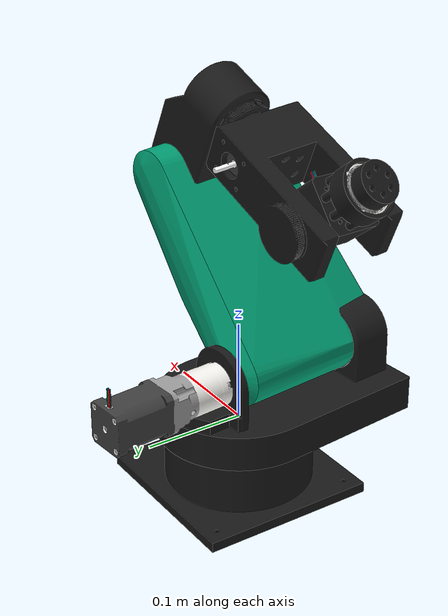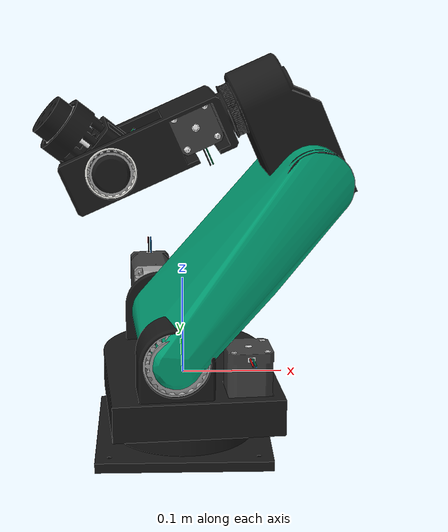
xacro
<?xml version="1.0"?>
<robot xmlns:xacro="http://www.ros.org/wiki/xacro" name="6DOF_URDF">

  <!-- Materials (shared across all assemblies) -->
  <material name="PETG_15_Gyroid">
    <color rgba="0.098 0.098 0.098 1.0"/>
  </material>

  <!-- Assembly includes -->
  <xacro:include filename="$(find 6DOF_URDF_description)/urdf/assemblies/6DOF_URDF.urdf.xacro"/>

  <!-- Instantiate assemblies -->
  <xacro:assembly_6DOF_URDF prefix=""/>

</robot>

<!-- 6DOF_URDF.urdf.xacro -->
<robot xmlns:xacro="http://www.ros.org/wiki/xacro" name="6DOF_URDF_macro">

  <xacro:macro name="assembly_6DOF_URDF" params="prefix">

    <!-- Links -->
    <link name="${prefix}base_link">
      <inertial>
        <origin xyz="0.000000 0.000000 -0.031884" rpy="0 0 0"/>
        <mass value="0.596687"/>
        <inertia ixx="8.608796e-04" ixy="0.000000e+00" ixz="0.000000e+00"
                 iyy="8.608778e-04" iyz="0.000000e+00" izz="1.231935e-03"/>
      </inertial>
      <visual>
        <origin xyz="0.000000 0.000000 0.000000" rpy="0.000000 0.000000 0.000000"/>
        <geometry>
          <mesh filename="package://6DOF_URDF_description/meshes/6DOF_URDF/base_link.dae" scale="1 1 1"/>
        </geometry>
        <material name="PETG_15_Gyroid"/>
      </visual>
      <collision>
        <origin xyz="0.000000 0.000000 0.000000" rpy="0.000000 0.000000 0.000000"/>
        <geometry>
          <mesh filename="package://6DOF_URDF_description/meshes/6DOF_URDF/base_link_collision.stl" scale="0.01 0.01 0.01"/>
        </geometry>
      </collision>
    </link>

    <link name="${prefix}Shoulder">
      <inertial>
        <origin xyz="-0.000095 -0.008184 0.098482" rpy="0 0 0"/>
        <mass value="2.094136"/>
        <inertia ixx="2.587229e-02" ixy="5.786696e-03" ixz="7.038970e-04"
                 iyy="4.623819e-03" iyz="-1.651409e-03" izz="2.818176e-02"/>
      </inertial>
      <visual>
        <origin xyz="0.000000 0.000000 0.000000" rpy="0.000000 0.000000 0.086342"/>
        <geometry>
          <mesh filename="package://6DOF_URDF_description/meshes/6DOF_URDF/Shoulder.dae" scale="1 1 1"/>
        </geometry>
      </visual>
      <collision>
        <origin xyz="0.000000 0.000000 0.000000" rpy="0.000000 0.000000 0.086342"/>
        <geometry>
          <mesh filename="package://6DOF_URDF_description/meshes/6DOF_URDF/Shoulder_collision.stl" scale="0.01 0.01 0.01"/>
        </geometry>
      </collision>
    </link>

    <link name="${prefix}UA">
      <inertial>
        <origin xyz="0.070469 0.078205 -0.113480" rpy="0 0 0"/>
        <mass value="1.236306"/>
        <inertia ixx="4.958228e-03" ixy="-2.087939e-03" ixz="-1.318650e-07"
                 iyy="4.306581e-03" iyz="-2.819097e-05" izz="4.648503e-03"/>
      </inertial>
      <visual>
        <origin xyz="0.000000 0.000000 0.000000" rpy="0.000000 0.000000 -0.698132"/>
        <geometry>
          <mesh filename="package://6DOF_URDF_description/meshes/6DOF_URDF/UA.dae" scale="1 1 1"/>
        </geometry>
      </visual>
      <collision>
        <origin xyz="0.000000 0.000000 0.000000" rpy="0.000000 0.000000 -0.698132"/>
        <geometry>
          <mesh filename="package://6DOF_URDF_description/meshes/6DOF_URDF/UA_collision.stl" scale="0.01 0.01 0.01"/>
        </geometry>
      </collision>
    </link>

    <link name="${prefix}Elbow">
      <inertial>
        <origin xyz="-0.015531 0.020790 -0.069395" rpy="0 0 0"/>
        <mass value="0.733476"/>
        <inertia ixx="1.328959e-03" ixy="4.778990e-04" ixz="-2.397529e-05"
                 iyy="7.168999e-04" iyz="3.209492e-05" izz="1.533380e-03"/>
      </inertial>
      <visual>
        <origin xyz="0.000000 0.000000 0.000000" rpy="0.000000 0.000000 -0.698132"/>
        <geometry>
          <mesh filename="package://6DOF_URDF_description/meshes/6DOF_URDF/Elbow.dae" scale="1 1 1"/>
        </geometry>
      </visual>
      <collision>
        <origin xyz="0.000000 0.000000 0.000000" rpy="0.000000 0.000000 -0.698132"/>
        <geometry>
          <mesh filename="package://6DOF_URDF_description/meshes/6DOF_URDF/Elbow_collision.stl" scale="0.01 0.01 0.01"/>
        </geometry>
      </collision>
    </link>

    <link name="${prefix}Roll">
      <inertial>
        <origin xyz="-0.001708 -0.009290 0.127780" rpy="0 0 0"/>
        <mass value="0.682370"/>
        <inertia ixx="1.825964e-03" ixy="-6.698787e-05" ixz="-2.868309e-05"
                 iyy="1.445666e-03" iyz="-1.542829e-04" izz="6.361788e-04"/>
      </inertial>
      <visual>
        <origin xyz="0.000000 0.000000 0.000000" rpy="3.141593 0.000000 -0.214197"/>
        <geometry>
          <mesh filename="package://6DOF_URDF_description/meshes/6DOF_URDF/Roll.dae" scale="1 1 1"/>
        </geometry>
      </visual>
      <collision>
        <origin xyz="0.000000 0.000000 0.000000" rpy="3.141593 0.000000 -0.214197"/>
        <geometry>
          <mesh filename="package://6DOF_URDF_description/meshes/6DOF_URDF/Roll_collision.stl" scale="0.01 0.01 0.01"/>
        </geometry>
      </collision>
    </link>

    <link name="${prefix}Yaw">
      <inertial>
        <origin xyz="-0.015546 -0.012336 0.050500" rpy="0 0 0"/>
        <mass value="0.259842"/>
        <inertia ixx="1.293116e-04" ixy="-3.743600e-05" ixz="-3.755642e-12"
                 iyy="1.422665e-04" iyz="1.808699e-10" izz="1.729664e-04"/>
      </inertial>
      <visual>
        <origin xyz="0.000000 0.000000 0.000000" rpy="-3.141593 0.000000 -0.412197"/>
        <geometry>
          <mesh filename="package://6DOF_URDF_description/meshes/6DOF_URDF/Yaw.dae" scale="1 1 1"/>
        </geometry>
      </visual>
      <collision>
        <origin xyz="0.000000 0.000000 0.000000" rpy="-3.141593 0.000000 -0.412197"/>
        <geometry>
          <mesh filename="package://6DOF_URDF_description/meshes/6DOF_URDF/Yaw_collision.stl" scale="0.01 0.01 0.01"/>
        </geometry>
      </collision>
    </link>

    <link name="${prefix}Gripper">
      <inertial>
        <origin xyz="0.000000 0.000000 -0.014692" rpy="0 0 0"/>
        <mass value="0.011203"/>
        <inertia ixx="1.935595e-06" ixy="0.000000e+00" ixz="0.000000e+00"
                 iyy="1.935595e-06" iyz="0.000000e+00" izz="1.864791e-06"/>
      </inertial>
      <visual>
        <origin xyz="0.000000 0.000000 0.000000" rpy="0.000000 0.000000 -0.607892"/>
        <geometry>
          <mesh filename="package://6DOF_URDF_description/meshes/6DOF_URDF/Gripper.dae" scale="1 1 1"/>
        </geometry>
      </visual>
      <collision>
        <origin xyz="0.000000 0.000000 0.000000" rpy="0.000000 0.000000 -0.607892"/>
        <geometry>
          <mesh filename="package://6DOF_URDF_description/meshes/6DOF_URDF/Gripper_collision.stl" scale="0.01 0.01 0.01"/>
        </geometry>
      </collision>
    </link>

    <!-- Joints (internal to assembly) -->
    <joint name="${prefix}Revolute_5" type="revolute">
      <parent link="${prefix}base_link"/>
      <child link="${prefix}Shoulder"/>
      <origin xyz="0.000000 0.000000 -0.051500" rpy="0.000000 0.000000 0.000000"/>
      <axis xyz="0.000000 0.000000 1.000000"/>
      <limit lower="0.000000" upper="6.283185" effort="100.0" velocity="1.00"/>
    </joint>

    <joint name="${prefix}Revolute_13" type="revolute">
      <parent link="${prefix}Shoulder"/>
      <child link="${prefix}UA"/>
      <origin xyz="-0.007100 -0.149900 0.111900" rpy="1.570796 0.000000 0.086342"/>
      <axis xyz="0.000000 0.000000 1.000000"/>
      <limit lower="0.000000" upper="6.283185" effort="100.0" velocity="1.00"/>
    </joint>

    <joint name="${prefix}Revolute_29" type="revolute">
      <parent link="${prefix}UA"/>
      <child link="${prefix}Elbow"/>
      <origin xyz="0.133252 0.154914 -0.036000" rpy="0.000000 0.000000 0.000000"/>
      <axis xyz="0.000000 0.000000 1.000000"/>
      <limit lower="0.000000" upper="6.283185" effort="100.0" velocity="1.00"/>
    </joint>

    <joint name="${prefix}Revolute_37" type="revolute">
      <parent link="${prefix}Elbow"/>
      <child link="${prefix}Roll"/>
      <origin xyz="-0.015463 0.083655 -0.071500" rpy="1.570796 -0.214197 -1.161568"/>
      <axis xyz="0.000000 0.000000 1.000000"/>
      <limit lower="0.000000" upper="6.283185" effort="100.0" velocity="1.00"/>
    </joint>

    <joint name="${prefix}Revolute_43" type="revolute">
      <parent link="${prefix}Roll"/>
      <child link="${prefix}Yaw"/>
      <origin xyz="0.008683 0.049748 0.186000" rpy="1.570796 1.158599 -0.289463"/>
      <axis xyz="0.000000 0.000000 1.000000"/>
      <limit lower="0.000000" upper="6.283185" effort="100.0" velocity="1.00"/>
    </joint>

    <joint name="${prefix}Revolute_46" type="continuous">
      <parent link="${prefix}Yaw"/>
      <child link="${prefix}Gripper"/>
      <origin xyz="-0.055454 -0.045134 0.050500" rpy="1.570796 0.110328 -0.887634"/>
      <axis xyz="0.000000 0.000000 1.000000"/>
      <limit effort="100.0" velocity="1.00"/>
    </joint>

    <!-- ROS 2 control: generated generic system -->
    <ros2_control name="${prefix}6DOF_URDF_system" type="system">
      <hardware>
        <plugin>mock_components/GenericSystem</plugin>
        <param name="cmd_topic">sim/6DOF_URDF_system/cmd</param>
        <param name="state_topic">sim/6DOF_URDF_system/state</param>
      </hardware>

      <joint name="${prefix}Revolute_13">
        <command_interface name="position"/>
        <command_interface name="velocity"/>
        <state_interface name="position">
          <param name="initial_value">0.0</param>
        </state_interface>
        <state_interface name="velocity"/>
        <state_interface name="effort"/>
      </joint>
      <joint name="${prefix}Revolute_29">
        <command_interface name="position"/>
        <command_interface name="velocity"/>
        <state_interface name="position">
          <param name="initial_value">0.0</param>
        </state_interface>
        <state_interface name="velocity"/>
        <state_interface name="effort"/>
      </joint>
      <joint name="${prefix}Revolute_37">
        <command_interface name="position"/>
        <command_interface name="velocity"/>
        <state_interface name="position">
          <param name="initial_value">0.0</param>
        </state_interface>
        <state_interface name="velocity"/>
        <state_interface name="effort"/>
      </joint>
      <joint name="${prefix}Revolute_43">
        <command_interface name="position"/>
        <command_interface name="velocity"/>
        <state_interface name="position">
          <param name="initial_value">0.0</param>
        </state_interface>
        <state_interface name="velocity"/>
        <state_interface name="effort"/>
      </joint>
      <joint name="${prefix}Revolute_46">
        <command_interface name="position"/>
        <command_interface name="velocity"/>
        <state_interface name="position">
          <param name="initial_value">0.0</param>
        </state_interface>
        <state_interface name="velocity"/>
        <state_interface name="effort"/>
      </joint>
      <joint name="${prefix}Revolute_5">
        <command_interface name="position"/>
        <command_interface name="velocity"/>
        <state_interface name="position">
          <param name="initial_value">0.0</param>
        </state_interface>
        <state_interface name="velocity"/>
        <state_interface name="effort"/>
      </joint>
    </ros2_control>

  </xacro:macro>

</robot>
